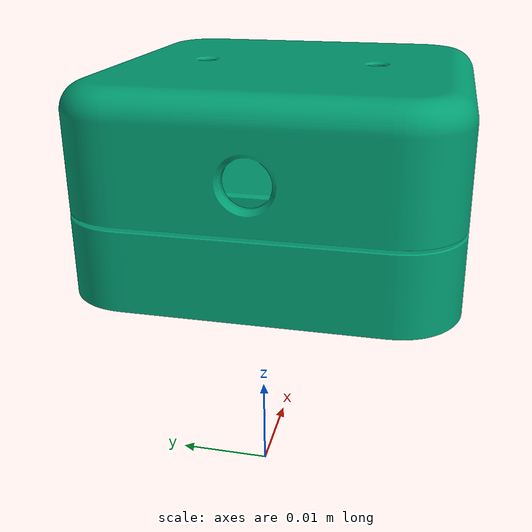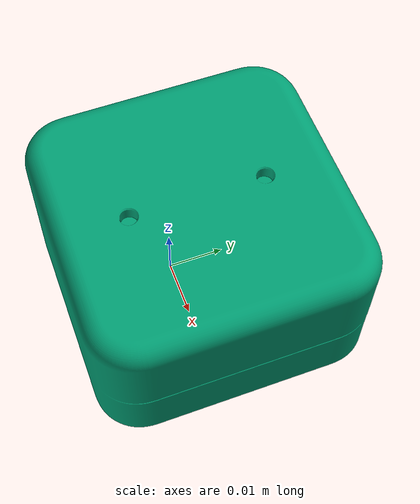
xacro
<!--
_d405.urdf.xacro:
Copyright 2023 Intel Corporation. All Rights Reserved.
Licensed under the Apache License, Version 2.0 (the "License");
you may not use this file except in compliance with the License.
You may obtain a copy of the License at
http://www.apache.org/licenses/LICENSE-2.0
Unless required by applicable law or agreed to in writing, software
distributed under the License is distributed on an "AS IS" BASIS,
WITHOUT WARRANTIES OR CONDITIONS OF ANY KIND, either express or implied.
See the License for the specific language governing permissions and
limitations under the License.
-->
<?xml version="1.0"?>
<robot name="realsense2_camera" xmlns:xacro="http://ros.org/wiki/xacro">

  <xacro:arg name="name"                    default="camera"/>
  <xacro:arg name="topics_ns"               default="camera"/>
  <xacro:arg name="use_nominal_extrinsics"  default="false"/>
  <xacro:arg name="visualize_color"         default="true"/>
  <xacro:arg name="align_depth"             default="true"/>
  <xacro:arg name="enable_pointCloud"       default="true"/>

  <xacro:include filename="$(find realsense2_description)/urdf/_d405.urdf.xacro" />

  <link name="base_link" />

  <xacro:sensor_d405 parent="base_link"
                    name="$(arg name)"
                    topics_ns="$(arg topics_ns)"
                    use_nominal_extrinsics="$(arg use_nominal_extrinsics)"
                    visualize_color="$(arg visualize_color)"
                    align_depth="$(arg align_depth)"
                    enable_pointCloud="$(arg enable_pointCloud)">
    <origin xyz="0.0 0.0 0.0" rpy="0.0 0.0 0.0"/>
  </xacro:sensor_d405>
</robot>

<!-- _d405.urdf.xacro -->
<!--
This is the URDF model for the Intel RealSense 405 camera, in its
aluminum peripherial evaluation case.
-->

<robot name="sensor_d405" xmlns:xacro="http://ros.org/wiki/xacro">
  <!-- Includes -->
  <xacro:include filename="$(find realsense2_description)/urdf/_d405.gazebo.xacro"/>
  <xacro:include filename="$(find realsense2_description)/urdf/_materials.urdf.xacro" />
  <xacro:include filename="$(find realsense2_description)/urdf/_usb_plug.urdf.xacro" />

  <xacro:macro name="sensor_d405" params="parent
                                          use_nominal_extrinsics:=false
                                          name:=camera
                                          topics_ns:=camera

                                          color_width:=1920
                                          color_height:=1080
                                          color_fps:=30
                                          visualize_color:=false

                                          infra_width:=640
                                          infra_height:=480
                                          infra_fps:=30

                                          clip_distance_z_min:=0.1
                                          clip_distance_z_max:=-1.0
                                          depth_width:=1280
                                          depth_height:=720
                                          depth_fps:=30

                                          align_depth:=false
                                          enable_pointCloud:=false

                                          *origin">
    <xacro:property name="M_PI" value="3.1415926535897931" />

    <!-- The following values are approximate, and the camera node
     publishing TF values with actual calibrated camera extrinsic values -->
    <xacro:property name="d405_cam_depth_to_infra1_offset" value="0.0"/>
    <xacro:property name="d405_cam_depth_to_infra2_offset" value="-0.018"/>
    <xacro:property name="d405_cam_depth_to_color_offset" value="0.0"/>

    <!-- The following values model the aluminum peripherial case for the
  	d405 camera, with the camera joint represented by the actual
  	peripherial camera tripod mount -->
    <xacro:property name="d405_cam_width" value="0.042"/>
    <xacro:property name="d405_cam_height" value="0.042"/>
    <xacro:property name="d405_cam_depth" value="0.023"/>
    <xacro:property name="d405_cam_mount_from_center_offset" value="0.01465"/>
    <!-- glass cover is 0.1 mm inwards from front aluminium plate -->
    <xacro:property name="d405_glass_to_front" value="0.1e-3"/>
    <!-- see datasheet Revision 017, Table. 4-16 page 97 -->
    <xacro:property name="d405_zero_depth_to_glass" value="3.7e-3"/>
    <!-- convenience precomputation to avoid clutter-->
    <xacro:property name="d405_mesh_x_offset" value="${d405_cam_mount_from_center_offset-d405_glass_to_front-d405_zero_depth_to_glass}"/>

    <!-- The following offset is relative to the physical d405 camera peripherial
  	camera tripod mount -->
    <xacro:property name="d405_cam_depth_px" value="${d405_cam_mount_from_center_offset}"/>
    <xacro:property name="d405_cam_depth_py" value="0.009"/>
    <xacro:property name="d405_cam_depth_pz" value="${d405_cam_height/2}"/>

    <!-- camera body, with origin at bottom screw mount -->
    <joint name="${name}_joint" type="fixed">
      <xacro:insert_block name="origin" />
      <parent link="${parent}"/>
      <child link="${name}_bottom_screw_frame" />
    </joint>
    <link name="${name}_bottom_screw_frame"/>

    <joint name="${name}_link_joint" type="fixed">
      <origin xyz="${d405_mesh_x_offset} ${d405_cam_depth_py} ${d405_cam_depth_pz}" rpy="0 0 0"/>
      <parent link="${name}_bottom_screw_frame"/>
      <child link="${name}_link" />
    </joint>

    <link name="${name}_link">
      <visual>
        <!-- the mesh origin is at front plate in between the two infrared camera axes -->
        <origin xyz="${d405_zero_depth_to_glass + d405_glass_to_front} ${-d405_cam_depth_py} 0" rpy="${M_PI/2} 0 ${M_PI/2}"/>
        <geometry>
	        <mesh filename="file://$(find realsense2_description)/meshes/d405.stl" scale="0.001 0.001 0.001" />
        </geometry>
        <material name="aluminum"/>
      </visual>
      <collision>
        <origin xyz="${d405_zero_depth_to_glass-d405_cam_depth/2} ${-d405_cam_depth_py} 0" rpy="0 0 0"/>
        <geometry>
          <box size="${d405_cam_depth} ${d405_cam_width} ${d405_cam_height}"/>
        </geometry>
      </collision>
      <inertial>
        <!-- The following are not reliable values, and should not be used for modeling -->
        <mass value="0.072" />
        <origin xyz="0 0 0" />
        <inertia ixx="0.003881243" ixy="0.0" ixz="0.0" iyy="0.000498940" iyz="0.0" izz="0.003879257" />
      </inertial>
    </link>

    <!-- Use the nominal extrinsics between camera frames if the calibrated extrinsics aren't being published. e.g. running the device in simulation  -->
    <xacro:if value="${use_nominal_extrinsics}">
      <!-- camera depth joints and links -->
      <joint name="${name}_depth_joint" type="fixed">
        <origin xyz="0 0 0" rpy="0 0 0"/>
        <parent link="${name}_link"/>
        <child link="${name}_depth_frame" />
      </joint>
      <link name="${name}_depth_frame"/>

      <joint name="${name}_depth_optical_joint" type="fixed">
        <origin xyz="0 0 0" rpy="${-M_PI/2} 0 ${-M_PI/2}" />
        <parent link="${name}_depth_frame" />
        <child link="${name}_depth_optical_frame" />
      </joint>
      <link name="${name}_depth_optical_frame"/>

      <!-- camera left IR joints and links -->
      <joint name="${name}_infra1_joint" type="fixed">
        <origin xyz="0 ${d405_cam_depth_to_infra1_offset} 0" rpy="0 0 0" />
        <parent link="${name}_link" />
        <child link="${name}_infra1_frame" />
      </joint>
      <link name="${name}_infra1_frame"/>

      <joint name="${name}_infra1_optical_joint" type="fixed">
        <origin xyz="0 0 0" rpy="${-M_PI/2} 0 ${-M_PI/2}" />
        <parent link="${name}_infra1_frame" />
        <child link="${name}_infra1_optical_frame" />
      </joint>
      <link name="${name}_infra1_optical_frame"/>

      <!-- camera right IR joints and links -->
      <joint name="${name}_infra2_joint" type="fixed">
        <origin xyz="0 ${d405_cam_depth_to_infra2_offset} 0" rpy="0 0 0" />
        <parent link="${name}_link" />
        <child link="${name}_infra2_frame" />
      </joint>
      <link name="${name}_infra2_frame"/>

      <joint name="${name}_infra2_optical_joint" type="fixed">
        <origin xyz="0 0 0" rpy="${-M_PI/2} 0 ${-M_PI/2}" />
        <parent link="${name}_infra2_frame" />
        <child link="${name}_infra2_optical_frame" />
      </joint>
      <link name="${name}_infra2_optical_frame"/>

      <!-- camera color joints and links -->
      <joint name="${name}_color_joint" type="fixed">
        <origin xyz="0 ${d405_cam_depth_to_color_offset} 0" rpy="0 0 0" />
        <parent link="${name}_link" />
        <child link="${name}_color_frame" />
      </joint>
      <link name="${name}_color_frame"/>

      <joint name="${name}_color_optical_joint" type="fixed">
        <origin xyz="0 0 0" rpy="${-M_PI/2} 0 ${-M_PI/2}" />
        <parent link="${name}_color_frame" />
        <child link="${name}_color_optical_frame" />
      </joint>
      <link name="${name}_color_optical_frame"/>
    </xacro:if>

    <!-- usb_plug -->

    <!-- Realsense Gazebo Plugin -->
    <xacro:gazebo_d405 camera_name="${name}"
                        topics_ns="${topics_ns}"
                        reference_link="${name}_link"

                        depth_optical_frame="${name}_depth_optical_frame"
                        depth_width="${depth_width}"
                        depth_height="${depth_height}"
                        depth_fps="${depth_fps}"

                        color_optical_frame="${name}_color_optical_frame"
                        color_width="${color_width}"
                        color_height="${color_height}"
                        color_fps="${color_fps}"
                        visualize_color="${visualize_color}"

                        infrared1_optical_frame="${name}_left_ir_optical_frame"
                        infrared2_optical_frame="${name}_right_ir_optical_frame"
                        infra_width="${infra_width}"
                        infra_height="${infra_height}"
                        infra_fps="${infra_fps}"

                        enable_pointCloud="${enable_pointCloud}"
                        clip_distance_z_min="${clip_distance_z_min}"
                        clip_distance_z_max="${clip_distance_z_max}"
                        align_depth="${align_depth}"
    />
  </xacro:macro>
</robot>
